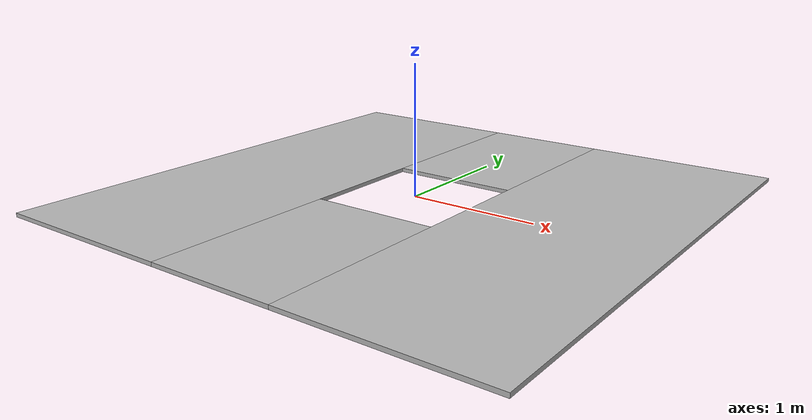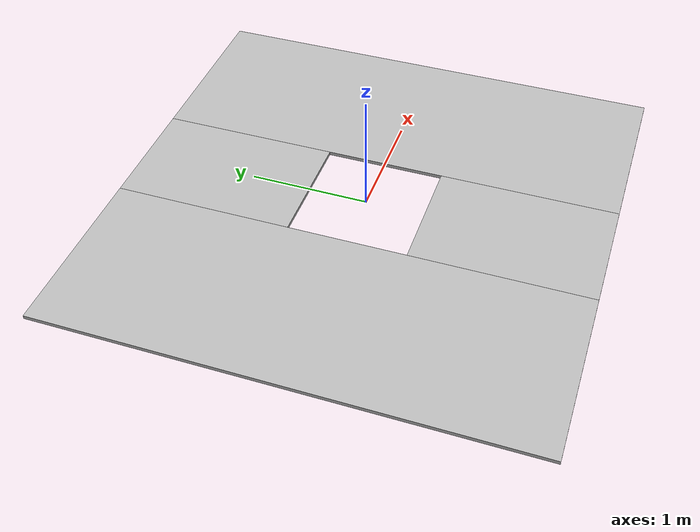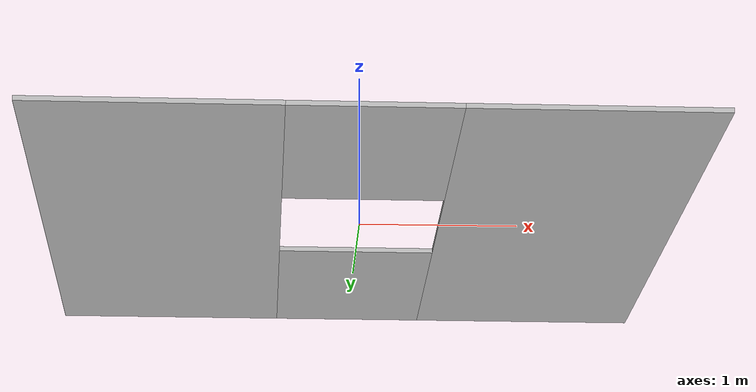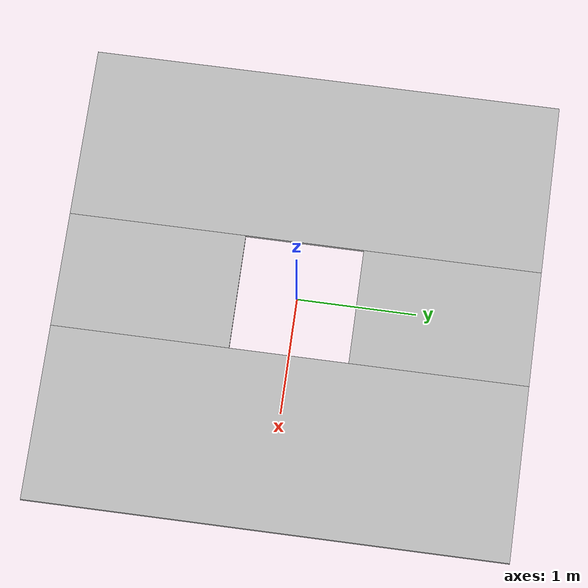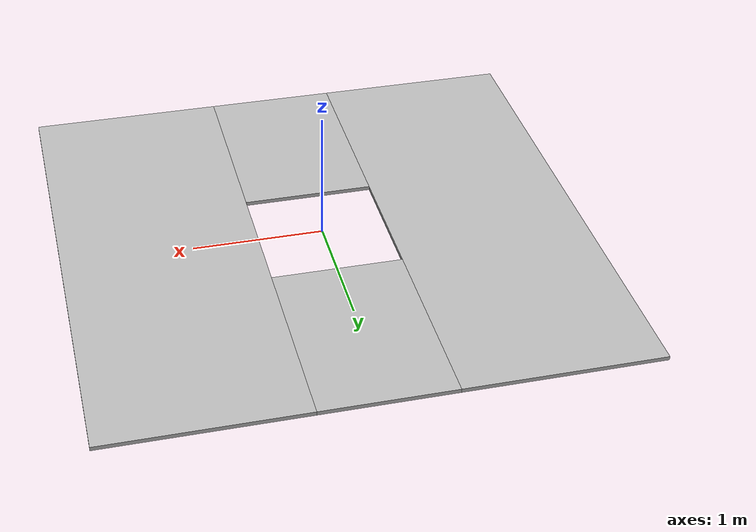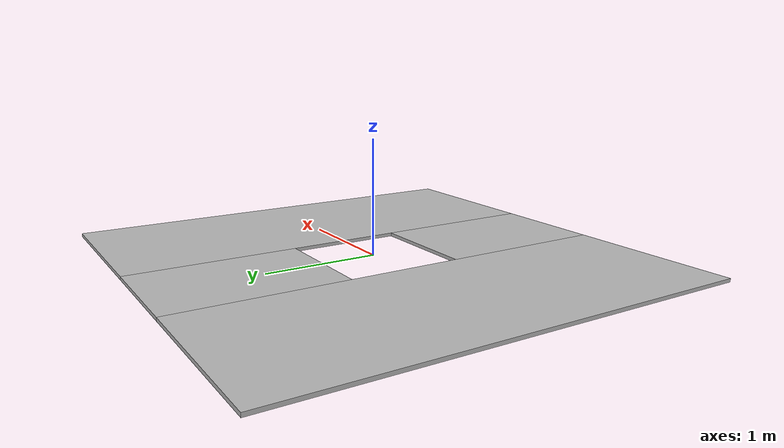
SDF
<?xml version="1.0" ?>
<sdf version="1.5">
  <model name="quad_hole_ground_center">
    <static>true</static>
    <link name="ground">
      <pose>1.25 0 0 0 0 0</pose>
      <collision name="groundc">
        <geometry>
          <box>
            <size>1.5 4 0.03</size>
          </box>
        </geometry>
      </collision>
      <visual name="groundv">
        <geometry>
          <box>
            <size>1.5 4 0.03</size>
          </box>
        </geometry>
        <material>
          <script>
            <uri>model://quad_hole_ground_center/materials/scripts</uri>
            <uri>model://quad_hole_ground_center/materials/textures</uri>
            <name>vrc/quad_hole_ground_center</name>
          </script>
        </material>
      </visual>
    </link>
    <link name="ground2">
      <pose>-1.25 0 0 0 0 0</pose>
      <collision name="groundc2">
        <geometry>
          <box>
            <size>1.5 4 0.03</size>
          </box>
        </geometry>
      </collision>
      <visual name="groundv2">
        <geometry>
          <box>
            <size>1.5 4 0.03</size>
          </box>
        </geometry>
        <material>
          <script>
            <uri>model://quad_hole_ground_center/materials/scripts</uri>
            <uri>model://quad_hole_ground_center/materials/textures</uri>
            <name>vrc/quad_hole_ground_center</name>
          </script>
        </material>
      </visual>
    </link>
    <link name="ground3">
      <pose>0 1.25 0 0 0 0</pose>
      <collision name="groundc3">
        <geometry>
          <box>
            <size>1 1.5 0.03</size>
          </box>
        </geometry>
      </collision>
      <visual name="groundv3">
        <geometry>
          <box>
            <size>1 1.5 0.03</size>
          </box>
        </geometry>
        <material>
          <script>
            <uri>model://quad_hole_ground_center/materials/scripts</uri>
            <uri>model://quad_hole_ground_center/materials/textures</uri>
            <name>vrc/quad_hole_ground_center</name>
          </script>
        </material>
      </visual>
    </link>
    <link name="ground4">
      <pose>0 -1.25 0 0 0 0</pose>
      <collision name="groundc4">
        <geometry>
          <box>
            <size>1 1.5 0.03</size>
          </box>
        </geometry>
      </collision>
      <visual name="groundv4">
        <geometry>
          <box>
            <size>1 1.5 0.03</size>
          </box>
        </geometry>
        <material>
          <script>
            <uri>model://quad_hole_ground_center/materials/scripts</uri>
            <uri>model://quad_hole_ground_center/materials/textures</uri>
            <name>vrc/quad_hole_ground_center</name>
          </script>
        </material>
      </visual>
    </link>

  </model>
</sdf>
